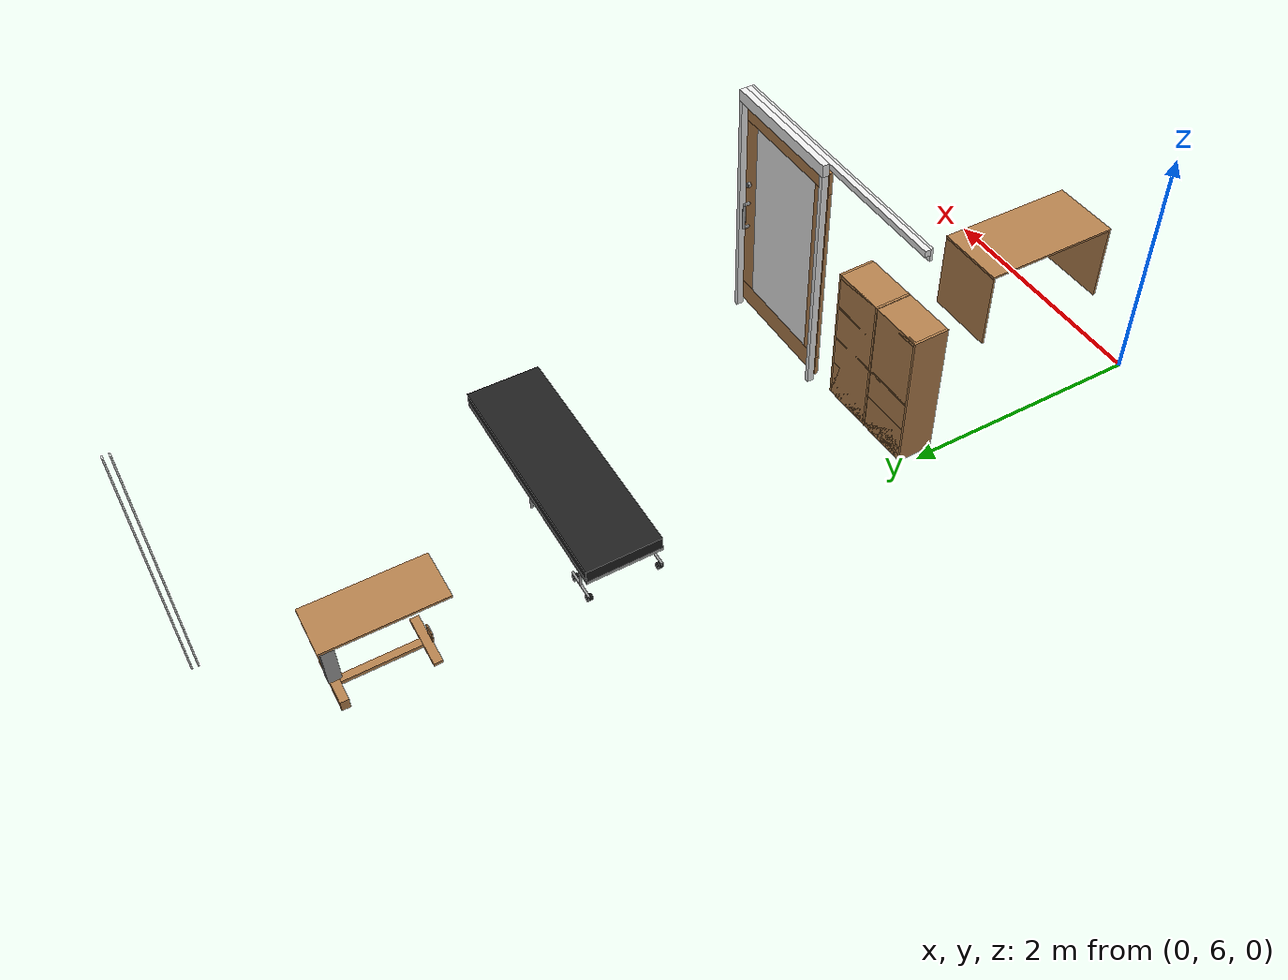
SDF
<sdf version="1.6">
 <world name="apartment">
  <model name="door_stopper_x02y16">
   <link name="door_frame">
    <visual name="stopper">
     <pose>0.0225 0.0175 1.025 0 -0 0</pose>
     <geometry><box><size>0.01 0.035 2.05</size></box></geometry>
     <material>
      <script><uri>model://base_materials/color/scripts</uri><name>hsr_color/white</name></script>
     </material>
    </visual>
    <collision name="collision_frame_1">
     <pose>0.0225 0.0175 1.025 0 -0 0</pose>
     <geometry><box><size>0.01 0.035 2.05</size></box></geometry>
    </collision>
    <visual name="frame_2">
     <pose>-0.0225 0.0175 1.025 0 -0 0</pose>
     <geometry><box><size>0.01 0.035 2.05</size></box></geometry>
     <material>
      <script><uri>model://base_materials/color/scripts</uri><name>hsr_color/white</name></script>
     </material>
    </visual>
    <collision name="collision_frame_2">
     <pose>-0.0225 0.0175 1.025 0 -0 0</pose>
     <geometry><box><size>0.01 0.035 2.05</size></box></geometry>
    </collision>
   </link>
   <static>1</static>
   <pose>0.93 13.2075 0 0 -0 1.5708</pose>
  </model>
  <model name="door_x03y09">
   <joint name="frame_to_world_joint" type="revolute">
    <parent>world</parent>
    <child>frame</child>
    <axis>
     <xyz>0 0 1</xyz>
     <limit><upper>0</upper><lower>0</lower></limit>
     <use_parent_model_frame>1</use_parent_model_frame>
     <dynamics><spring_reference>0</spring_reference><spring_stiffness>0</spring_stiffness></dynamics>
    </axis>
   </joint>
   <link name="frame">
    <inertial>
     <mass>50</mass>
     <inertia><ixx>1</ixx><ixy>0</ixy><ixz>0</ixz><iyy>1</iyy><iyz>0</iyz><izz>1</izz></inertia>
    </inertial>
    <visual name="right_frame">
     <pose>0 0.5325 0.995 0 -0 0</pose>
     <geometry><box><size>0.055 0.035 1.99</size></box></geometry>
     <material>
      <script><uri>model://base_materials/color/scripts</uri><name>hsr_color/white</name></script>
     </material>
    </visual>
    <collision name="collision_right_frame">
     <pose>0 0.5325 0.995 0 -0 0</pose>
     <geometry><box><size>0.055 0.035 1.99</size></box></geometry>
    </collision>
    <visual name="left_frame">
     <pose>0 -0.5325 0.995 0 -0 0</pose>
     <geometry><box><size>0.055 0.035 1.99</size></box></geometry>
     <material>
      <script><uri>model://base_materials/color/scripts</uri><name>hsr_color/white</name></script>
     </material>
    </visual>
    <collision name="collision_left_frame">
     <pose>0 -0.5325 0.995 0 -0 0</pose>
     <geometry><box><size>0.055 0.035 1.99</size></box></geometry>
    </collision>
    <visual name="top_frame">
     <pose>0 0 2.04 0 -0 0</pose>
     <geometry><box><size>0.055 1.1 0.1</size></box></geometry>
     <material>
      <script><uri>model://base_materials/color/scripts</uri><name>hsr_color/white</name></script>
     </material>
    </visual>
    <collision name="collision_top_frame">
     <pose>0 0 2.04 0 -0 0</pose>
     <geometry><box><size>0.055 1.1 0.1</size></box></geometry>
    </collision>
    <visual name="top_guard">
     <pose>0.05 -0.55 2.065 0 -0 0</pose>
     <geometry><box><size>0.045 2.2 0.05</size></box></geometry>
     <material>
      <script><uri>model://base_materials/color/scripts</uri><name>hsr_color/white</name></script>
     </material>
    </visual>
    <collision name="collision_top_guard">
     <pose>0.05 -0.55 2.065 0 -0 0</pose>
     <geometry><box><size>0.045 2.2 0.05</size></box></geometry>
    </collision>
    <visual name="front_guard">
     <pose>0.0825 -0.55 2.04 0 -0 0</pose>
     <geometry><box><size>0.02 2.2 0.1</size></box></geometry>
     <material>
      <script><uri>model://base_materials/color/scripts</uri><name>hsr_color/white</name></script>
     </material>
    </visual>
    <collision name="collision_front_guard">
     <pose>0.0825 -0.55 2.04 0 -0 0</pose>
     <geometry><box><size>0.02 2.2 0.1</size></box></geometry>
    </collision>
   </link>
   <link name="door">
    <pose>-0.0275 0 0 0 -0 0</pose>
    <visual name="glass">
     <pose>0.0775 0 1.025 0 -0 0</pose>
     <geometry><box><size>0.03 0.77 1.58</size></box></geometry>
     <material>
      <script>
       <name>hsr_color/white_transparency1</name>
       <name>hsr_color/cornflowerblue_transparency1</name>
       <uri>__default__</uri>
      </script>
     </material>
    </visual>
    <collision name="collision_glass">
     <pose>0.0775 0 1.025 0 -0 0</pose>
     <geometry><box><size>0.03 0.77 1.58</size></box></geometry>
    </collision>
    <visual name="top_frame">
     <pose>0.0775 0 1.9075 0 -0 0</pose>
     <geometry><box><size>0.03 1.1 0.185</size></box></geometry>
     <material>
      <script><uri>model://base_materials/wood/scripts/wood.material</uri><name>base_materials/wood</name></script>
     </material>
    </visual>
    <collision name="collision_top_frame">
     <pose>0.0775 0 1.9075 0 -0 0</pose>
     <geometry><box><size>0.03 1.1 0.185</size></box></geometry>
    </collision>
    <visual name="right_frame">
     <pose>0.0775 0.4675 1.025 0 -0 0</pose>
     <geometry><box><size>0.03 0.165 1.58</size></box></geometry>
     <material>
      <script><uri>model://base_materials/wood/scripts/wood.material</uri><name>base_materials/wood</name></script>
     </material>
    </visual>
    <collision name="collision_right_frame">
     <pose>0.0775 0.4675 1.025 0 -0 0</pose>
     <geometry><box><size>0.03 0.165 1.58</size></box></geometry>
    </collision>
    <visual name="left_frame">
     <pose>0.0775 -0.4675 1.025 0 -0 0</pose>
     <geometry><box><size>0.03 0.165 1.58</size></box></geometry>
     <material>
      <script><uri>model://base_materials/wood/scripts/wood.material</uri><name>base_materials/wood</name></script>
     </material>
    </visual>
    <collision name="collision_left_frame">
     <pose>0.0775 -0.4675 1.025 0 -0 0</pose>
     <geometry><box><size>0.03 0.165 1.58</size></box></geometry>
    </collision>
    <visual name="bottom_frame">
     <pose>0.0775 0 0.1425 0 -0 0</pose>
     <geometry><box><size>0.03 1.1 0.185</size></box></geometry>
     <material>
      <script><uri>model://base_materials/wood/scripts/wood.material</uri><name>base_materials/wood</name></script>
     </material>
    </visual>
    <collision name="collision_bottom_frame">
     <pose>0.0775 0 0.1425 0 -0 0</pose>
     <geometry><box><size>0.03 1.1 0.185</size></box></geometry>
    </collision>
    <visual name="handle_top_frame">
     <pose>0.0775 0.4675 1.0675 3.14159 1.57079 3.14159</pose>
     <geometry><cylinder><radius>0.0125</radius><length>0.125</length></cylinder></geometry>
     <material>
      <script><uri>model://base_materials/color/scripts</uri><name>hsr_color/grey</name></script>
     </material>
    </visual>
    <collision name="collision_handle_top_frame">
     <pose>0.0775 0.4675 1.0675 3.14159 1.57079 3.14159</pose>
     <geometry><cylinder><radius>0.0125</radius><length>0.125</length></cylinder></geometry>
    </collision>
    <visual name="handle_bottom_frame">
     <pose>0.0775 0.4675 0.8425 3.14159 1.57079 3.14159</pose>
     <geometry><cylinder><radius>0.0125</radius><length>0.125</length></cylinder></geometry>
     <material>
      <script><uri>model://base_materials/color/scripts</uri><name>hsr_color/grey</name></script>
     </material>
    </visual>
    <collision name="collision_handle_bottom_frame">
     <pose>0.0775 0.4675 0.8425 3.14159 1.57079 3.14159</pose>
     <geometry><cylinder><radius>0.0125</radius><length>0.125</length></cylinder></geometry>
    </collision>
    <visual name="handle_front_frame">
     <pose>0.14 0.4675 0.955 0 -0 0</pose>
     <geometry><cylinder><radius>0.0125</radius><length>0.225</length></cylinder></geometry>
     <material>
      <script><uri>model://base_materials/color/scripts</uri><name>hsr_color/grey</name></script>
     </material>
    </visual>
    <collision name="collision_handle_front_frame">
     <pose>0.14 0.4675 0.955 0 -0 0</pose>
     <geometry><cylinder><radius>0.0125</radius><length>0.225</length></cylinder></geometry>
    </collision>
    <visual name="handle_back_frame">
     <pose>0.015 0.4675 0.955 0 -0 0</pose>
     <geometry><cylinder><radius>0.0125</radius><length>0.225</length></cylinder></geometry>
     <material>
      <script><uri>model://base_materials/color/scripts</uri><name>hsr_color/grey</name></script>
     </material>
    </visual>
    <collision name="collision_handle_back_frame">
     <pose>0.015 0.4675 0.955 0 -0 0</pose>
     <geometry><cylinder><radius>0.0125</radius><length>0.225</length></cylinder></geometry>
    </collision>
    <visual name="handle_front_top_corner">
     <pose>0.14 0.4675 1.0675 0 -0 0</pose>
     <geometry><sphere><radius>0.0125</radius></sphere></geometry>
     <material>
      <script><uri>model://base_materials/color/scripts</uri><name>hsr_color/grey</name></script>
     </material>
    </visual>
    <collision name="collision_handle_front_top_corner">
     <pose>0.14 0.4675 1.0675 0 -0 0</pose>
     <geometry><sphere><radius>0.0125</radius></sphere></geometry>
    </collision>
    <visual name="handle_front_bottom_corner">
     <pose>0.14 0.4675 0.8425 0 -0 0</pose>
     <geometry><sphere><radius>0.0125</radius></sphere></geometry>
     <material>
      <script><uri>model://base_materials/color/scripts</uri><name>hsr_color/grey</name></script>
     </material>
    </visual>
    <collision name="collision_handle_front_bottom_corner">
     <pose>0.14 0.4675 0.8425 0 -0 0</pose>
     <geometry><sphere><radius>0.0125</radius></sphere></geometry>
    </collision>
    <visual name="handle_back_top_corner">
     <pose>0.015 0.4675 1.0675 0 -0 0</pose>
     <geometry><sphere><radius>0.0125</radius></sphere></geometry>
     <material>
      <script><uri>model://base_materials/color/scripts</uri><name>hsr_color/grey</name></script>
     </material>
    </visual>
    <collision name="collision_handle_back_top_corner">
     <pose>0.015 0.4675 1.0675 0 -0 0</pose>
     <geometry><sphere><radius>0.0125</radius></sphere></geometry>
    </collision>
    <visual name="handle_back_bottom_corner">
     <pose>0.015 0.4675 0.8425 0 -0 0</pose>
     <geometry><sphere><radius>0.0125</radius></sphere></geometry>
     <material>
      <script><uri>model://base_materials/color/scripts</uri><name>hsr_color/grey</name></script>
     </material>
    </visual>
    <collision name="collision_handle_back_bottom_corner">
     <pose>0.015 0.4675 0.8425 0 -0 0</pose>
     <geometry><sphere><radius>0.0125</radius></sphere></geometry>
    </collision>
    <visual name="handle_lock1">
     <pose>0.0775 0.4675 1.25 3.14159 1.57079 3.14159</pose>
     <geometry><cylinder><radius>0.02</radius><length>0.08</length></cylinder></geometry>
     <material>
      <script><uri>model://base_materials/color/scripts</uri><name>hsr_color/grey</name></script>
     </material>
    </visual>
    <collision name="collision_handle_lock1">
     <pose>0.0775 0.4675 1.25 3.14159 1.57079 3.14159</pose>
     <geometry><cylinder><radius>0.02</radius><length>0.08</length></cylinder></geometry>
    </collision>
    <visual name="handle_lock2">
     <pose>0.0775 0.4675 1.25 3.14159 1.57079 3.14159</pose>
     <geometry><cylinder><radius>0.015</radius><length>0.09</length></cylinder></geometry>
     <material>
      <script><uri>model://base_materials/color/scripts</uri><name>hsr_color/grey</name></script>
     </material>
    </visual>
    <collision name="collision_handle_lock2">
     <pose>0.0775 0.4675 1.25 3.14159 1.57079 3.14159</pose>
     <geometry><cylinder><radius>0.015</radius><length>0.09</length></cylinder></geometry>
    </collision>
    <velocity_decay><linear>0</linear><angular>0</angular></velocity_decay>
    <inertial>
     <inertia><ixx>1</ixx><ixy>0</ixy><ixz>0</ixz><iyy>1</iyy><iyz>0</iyz><izz>1</izz></inertia>
     <mass>1</mass>
    </inertial>
   </link>
   <joint name="top_sliding_joint" type="prismatic">
    <parent>frame</parent>
    <child>door</child>
    <axis>
     <dynamics>
      <damping>1</damping>
      <friction>1</friction>
      <spring_reference>0</spring_reference>
      <spring_stiffness>0</spring_stiffness>
     </dynamics>
     <limit><lower>-1</lower><upper>0</upper></limit>
     <xyz>0 1 0</xyz>
     <use_parent_model_frame>1</use_parent_model_frame>
    </axis>
   </joint>
   <static>0</static>
   <pose>1.65 8.23 0 0 2e-06 -1.5708</pose>
  </model>
  <model name="office_desk01">
   <link name="link">
    <inertial>
     <mass>10</mass>
     <inertia><ixx>1</ixx><ixy>0</ixy><ixz>0</ixz><iyy>1</iyy><iyz>0</iyz><izz>1</izz></inertia>
    </inertial>
    <visual name="top_board">
     <pose>-0.3 0.6 0.69 0 -0 0</pose>
     <geometry><box><size>0.6 1.2 0.02</size></box></geometry>
     <material>
      <script>
       <uri>model://base_materials/wood/scripts/wood.material</uri>
       <name>base_materials/dark_wood</name>
      </script>
     </material>
    </visual>
    <collision name="collision_top_board">
     <pose>-0.3 0.6 0.69 0 -0 0</pose>
     <geometry><box><size>0.6 1.2 0.02</size></box></geometry>
    </collision>
    <visual name="left_board">
     <pose>-0.3 0.01 0.34 0 -0 0</pose>
     <geometry><box><size>0.6 0.02 0.68</size></box></geometry>
     <material>
      <script>
       <uri>model://base_materials/wood/scripts/wood.material</uri>
       <name>base_materials/dark_wood</name>
      </script>
     </material>
    </visual>
    <collision name="collision_left_board">
     <pose>-0.3 0.01 0.34 0 -0 0</pose>
     <geometry><box><size>0.6 0.02 0.68</size></box></geometry>
    </collision>
    <visual name="right_board">
     <pose>-0.3 1.19 0.34 0 -0 0</pose>
     <geometry><box><size>0.6 0.02 0.68</size></box></geometry>
     <material>
      <script>
       <uri>model://base_materials/wood/scripts/wood.material</uri>
       <name>base_materials/dark_wood</name>
      </script>
     </material>
    </visual>
    <collision name="collision_right_board">
     <pose>-0.3 1.19 0.34 0 -0 0</pose>
     <geometry><box><size>0.6 0.02 0.68</size></box></geometry>
    </collision>
    <visual name="center_board">
     <pose>-0.14 0.6 0.49 0 -0 0</pose>
     <geometry><box><size>0.02 1.16 0.4</size></box></geometry>
     <material>
      <script>
       <uri>model://base_materials/wood/scripts/wood.material</uri>
       <name>base_materials/dark_wood</name>
      </script>
     </material>
    </visual>
    <collision name="ollision_center_board">
     <pose>-0.14 0.6 0.49 0 -0 0</pose>
     <geometry><box><size>0.02 1.16 0.4</size></box></geometry>
    </collision>
    <velocity_decay><linear>0</linear><angular>0</angular></velocity_decay>
   </link>
   <static>1</static>
   <pose>1.35599 5.5925 0 0 0 -4e-06</pose>
  </model>
  <model name="bed">
   <link name="link">
    <inertial>
     <mass>10</mass>
     <inertia><ixx>1</ixx><ixy>0</ixy><ixz>0</ixz><iyy>1</iyy><iyz>0</iyz><izz>1</izz></inertia>
    </inertial>
    <visual name="cushion">
     <pose>-0.295 -0.975 0.2875 0 -0 0</pose>
     <geometry><box><size>0.59 1.95 0.095</size></box></geometry>
     <material>
      <script>
       <uri>model://base_materials/cloth/scripts</uri>
       <uri>model://base_materials/cloth/textures</uri>
       <name>cloth/black</name>
      </script>
     </material>
    </visual>
    <collision name="collision_cushion">
     <pose>-0.295 -0.975 0.2875 0 -0 0</pose>
     <geometry><box><size>0.59 1.95 0.095</size></box></geometry>
    </collision>
    <visual name="top_frame">
     <pose>-0.295 -0.975 0.225 0 -0 0</pose>
     <geometry><box><size>0.59 1.95 0.03</size></box></geometry>
     <material>
      <script><uri>model://base_materials/color/scripts</uri><name>hsr_color/grey</name></script>
     </material>
    </visual>
    <collision name="collision_top_frame">
     <pose>-0.295 -0.975 0.225 0 -0 0</pose>
     <geometry><box><size>0.59 1.95 0.03</size></box></geometry>
    </collision>
    <visual name="right_front_pole">
     <pose>-0.075 -0.0125 0.125 0 -0 0</pose>
     <geometry><cylinder><radius>0.0125</radius><length>0.17</length></cylinder></geometry>
     <material>
      <script><uri>model://base_materials/color/scripts</uri><name>hsr_color/grey</name></script>
     </material>
    </visual>
    <collision name="collision_right_front_pole">
     <pose>-0.075 -0.0125 0.125 0 -0 0</pose>
     <geometry><cylinder><radius>0.0125</radius><length>0.17</length></cylinder></geometry>
    </collision>
    <visual name="right_front_caster">
     <pose>-0.075 -0.0125 0.02 0 1.57 0</pose>
     <geometry><cylinder><radius>0.02</radius><length>0.04</length></cylinder></geometry>
     <material><script><name>Gazebo/Black</name><uri>__default__</uri></script></material>
    </visual>
    <collision name="collision_right_front_caster">
     <pose>-0.075 -0.0125 0.02 0 1.57 0</pose>
     <geometry><cylinder><radius>0.02</radius><length>0.04</length></cylinder></geometry>
    </collision>
    <visual name="right_back_pole">
     <pose>-0.46 -0.0125 0.125 0 -0 0</pose>
     <geometry><cylinder><radius>0.0125</radius><length>0.17</length></cylinder></geometry>
     <material>
      <script><uri>model://base_materials/color/scripts</uri><name>hsr_color/grey</name></script>
     </material>
    </visual>
    <collision name="collision_right_back_pole">
     <pose>-0.46 -0.0125 0.125 0 -0 0</pose>
     <geometry><cylinder><radius>0.0125</radius><length>0.17</length></cylinder></geometry>
    </collision>
    <visual name="right_back_caster">
     <pose>-0.46 -0.0125 0.02 0 1.57 0</pose>
     <geometry><cylinder><radius>0.02</radius><length>0.04</length></cylinder></geometry>
     <material><script><name>Gazebo/Black</name><uri>__default__</uri></script></material>
    </visual>
    <collision name="collision_back_front_caster">
     <pose>-0.46 -0.0125 0.02 0 1.57 0</pose>
     <geometry><cylinder><radius>0.02</radius><length>0.04</length></cylinder></geometry>
    </collision>
    <visual name="center_front_pole">
     <pose>-0.0425 -0.975 0.105 0 -0 0</pose>
     <geometry><cylinder><radius>0.0125</radius><length>0.21</length></cylinder></geometry>
     <material>
      <script><uri>model://base_materials/color/scripts</uri><name>hsr_color/grey</name></script>
     </material>
    </visual>
    <collision name="collision_center_front_pole">
     <pose>-0.0425 -0.975 0.105 0 -0 0</pose>
     <geometry><cylinder><radius>0.0125</radius><length>0.17</length></cylinder></geometry>
    </collision>
    <visual name="center_back_pole">
     <pose>-0.5475 -0.975 0.105 0 -0 0</pose>
     <geometry><cylinder><radius>0.0125</radius><length>0.21</length></cylinder></geometry>
     <material>
      <script><uri>model://base_materials/color/scripts</uri><name>hsr_color/grey</name></script>
     </material>
    </visual>
    <collision name="collision_center_back_pole">
     <pose>-0.5475 -0.975 0.105 0 -0 0</pose>
     <geometry><cylinder><radius>0.0125</radius><length>0.17</length></cylinder></geometry>
    </collision>
    <visual name="left_front_horizon_pole">
     <pose>-0.01 -1.825 0.06 1.57 -0 0</pose>
     <geometry><cylinder><radius>0.01</radius><length>0.25</length></cylinder></geometry>
     <material>
      <script><uri>model://base_materials/color/scripts</uri><name>hsr_color/grey</name></script>
     </material>
    </visual>
    <collision name="collision_left_front_horizon_pole">
     <pose>-0.01 -1.825 0.06 1.57 -0 0</pose>
     <geometry><cylinder><radius>0.01</radius><length>0.25</length></cylinder></geometry>
    </collision>
    <visual name="left_front_vertical_pole">
     <pose>-0.01 -1.825 0.14 0 -0 0</pose>
     <geometry><cylinder><radius>0.01</radius><length>0.14</length></cylinder></geometry>
     <material>
      <script><uri>model://base_materials/color/scripts</uri><name>hsr_color/grey</name></script>
     </material>
    </visual>
    <collision name="collision_left_front_vertical_pole">
     <pose>-0.01 -1.825 0.14 0 -0 0</pose>
     <geometry><cylinder><radius>0.01</radius><length>0.14</length></cylinder></geometry>
    </collision>
    <visual name="left_front_caster_r">
     <pose>-0.02 -1.725 0.025 0 1.57 0</pose>
     <geometry><cylinder><radius>0.025</radius><length>0.04</length></cylinder></geometry>
     <material><script><name>Gazebo/Black</name><uri>__default__</uri></script></material>
    </visual>
    <collision name="collision_left_front_caster_r">
     <pose>-0.02 -1.725 0.025 0 1.57 0</pose>
     <geometry><cylinder><radius>0.025</radius><length>0.04</length></cylinder></geometry>
    </collision>
    <visual name="left_front_caster_l">
     <pose>-0.02 -1.925 0.025 0 1.57 0</pose>
     <geometry><cylinder><radius>0.025</radius><length>0.04</length></cylinder></geometry>
     <material><script><name>Gazebo/Black</name><uri>__default__</uri></script></material>
    </visual>
    <collision name="collision_left_front_caster_l">
     <pose>-0.02 -1.925 0.025 0 1.57 0</pose>
     <geometry><cylinder><radius>0.025</radius><length>0.04</length></cylinder></geometry>
    </collision>
    <visual name="left_back_horizon_pole">
     <pose>-0.58 -1.825 0.06 1.57 -0 0</pose>
     <geometry><cylinder><radius>0.01</radius><length>0.25</length></cylinder></geometry>
     <material>
      <script><uri>model://base_materials/color/scripts</uri><name>hsr_color/grey</name></script>
     </material>
    </visual>
    <collision name="collision_left_back_horizon_pole">
     <pose>-0.58 -1.825 0.06 1.57 -0 0</pose>
     <geometry><cylinder><radius>0.01</radius><length>0.25</length></cylinder></geometry>
    </collision>
    <visual name="left_back_vertical_pole">
     <pose>-0.58 -1.825 0.14 0 -0 0</pose>
     <geometry><cylinder><radius>0.01</radius><length>0.14</length></cylinder></geometry>
     <material>
      <script><uri>model://base_materials/color/scripts</uri><name>hsr_color/grey</name></script>
     </material>
    </visual>
    <collision name="collision_left_back_vertical_pole">
     <pose>-0.58 -1.825 0.14 0 -0 0</pose>
     <geometry><cylinder><radius>0.01</radius><length>0.14</length></cylinder></geometry>
    </collision>
    <visual name="left_back_caster_r">
     <pose>-0.57 -1.725 0.025 0 1.57 0</pose>
     <geometry><cylinder><radius>0.025</radius><length>0.04</length></cylinder></geometry>
     <material><script><name>Gazebo/Black</name><uri>__default__</uri></script></material>
    </visual>
    <collision name="collision_left_back_caster_r">
     <pose>-0.57 -1.725 0.025 0 1.57 0</pose>
     <geometry><cylinder><radius>0.025</radius><length>0.04</length></cylinder></geometry>
    </collision>
    <visual name="left_back_caster_l">
     <pose>-0.57 -1.925 0.025 0 1.57 0</pose>
     <geometry><cylinder><radius>0.025</radius><length>0.04</length></cylinder></geometry>
     <material><script><name>Gazebo/Black</name><uri>__default__</uri></script></material>
    </visual>
    <collision name="collision_left_back_caster_l">
     <pose>-0.57 -1.925 0.025 0 1.57 0</pose>
     <geometry><cylinder><radius>0.025</radius><length>0.04</length></cylinder></geometry>
    </collision>
    <velocity_decay><linear>0</linear><angular>0</angular></velocity_decay>
   </link>
   <static>1</static>
   <pose>2.00466 10.146 0 0 0 -1.5708</pose>
  </model>
  <model name="bed_table">
   <link name="link">
    <inertial>
     <pose>0 0.449 0.001 0 -0 0</pose>
     <mass>10</mass>
     <inertia><ixx>1</ixx><ixy>0</ixy><ixz>0</ixz><iyy>1</iyy><iyz>0</iyz><izz>1</izz></inertia>
    </inertial>
    <visual name="top_board">
     <pose>0 0.449 0.625 0 -0 0</pose>
     <geometry><box><size>0.398 0.898 0.02</size></box></geometry>
     <material>
      <script><uri>model://base_materials/wood/scripts/wood.material</uri><name>base_materials/wood</name></script>
     </material>
    </visual>
    <collision name="collision_top_board">
     <pose>0 0.449 0.625 0 -0 0</pose>
     <geometry><box><size>0.398 0.898 0.02</size></box></geometry>
    </collision>
    <visual name="right_pole">
     <pose>0 0.817 0.3515 0 -0 0</pose>
     <geometry><box><size>0.072 0.094 0.527</size></box></geometry>
     <material>
      <script><uri>model://base_materials/color/scripts</uri><name>hsr_color/grey</name></script>
     </material>
    </visual>
    <collision name="collision_right_pole">
     <pose>0 0.817 0.3515 0 -0 0</pose>
     <geometry><box><size>0.072 0.094 0.527</size></box></geometry>
    </collision>
    <visual name="right_bottom_pole">
     <pose>0 0.8225 0.044 0 -0 0</pose>
     <geometry><box><size>0.42 0.063 0.088</size></box></geometry>
     <material>
      <script><uri>model://base_materials/wood/scripts/wood.material</uri><name>base_materials/wood</name></script>
     </material>
    </visual>
    <collision name="collision_right_bottom_pole">
     <pose>0 0.8225 0.044 0 -0 0</pose>
     <geometry><box><size>0.42 0.063 0.088</size></box></geometry>
    </collision>
    <visual name="bottom_center_pole">
     <pose>0 0.502 0.03 0 -0 0</pose>
     <geometry><box><size>0.06 0.578 0.03</size></box></geometry>
     <material>
      <script><uri>model://base_materials/wood/scripts/wood.material</uri><name>base_materials/wood</name></script>
     </material>
    </visual>
    <collision name="collision_bottom_center_pole">
     <pose>0 0.502 0.03 0 -0 0</pose>
     <geometry><box><size>0.06 0.578 0.03</size></box></geometry>
    </collision>
    <visual name="left_bottom_pole">
     <pose>0 0.18 0.0325 0 -0 0</pose>
     <geometry><box><size>0.418 0.066 0.025</size></box></geometry>
     <material>
      <script><uri>model://base_materials/wood/scripts/wood.material</uri><name>base_materials/wood</name></script>
     </material>
    </visual>
    <collision name="collision_left_bottom_pole">
     <pose>0 0.18 0.0325 0 -0 0</pose>
     <geometry><box><size>0.418 0.066 0.025</size></box></geometry>
    </collision>
    <visual name="marker_0010">
     <pose>0 0.14 0.093 0 -0 0</pose>
     <geometry><box><size>0.09 0.001 0.09</size></box></geometry>
     <material>
      <script>
       <uri>model://bed_table/marker/0010/scripts</uri>
       <uri>model://bed_table/marker/0010/textures</uri>
       <name>Marker/0010</name>
      </script>
     </material>
    </visual>
    <collision name="collision_marker_0010">
     <pose>0 0.14 0.093 0 -0 0</pose>
     <geometry><box><size>0.09 0.001 0.09</size></box></geometry>
    </collision>
    <visual name="marker_0010_back_plate">
     <pose>0 0.146 0.093 0 -0 0</pose>
     <geometry><box><size>0.09 0.01 0.09</size></box></geometry>
     <material>
      <script><uri>model://base_materials/wood/scripts/wood.material</uri><name>base_materials/wood</name></script>
     </material>
    </visual>
    <collision name="collision_marker_0010_back_plate">
     <pose>0 0.146 0.093 0 -0 0</pose>
     <geometry><box><size>0.09 0.01 0.09</size></box></geometry>
    </collision>
    <velocity_decay><linear>0</linear><angular>0</angular></velocity_decay>
   </link>
   <static>1</static>
   <pose>0.30649 11.6368 0 0 -0 0</pose>
  </model>
  <model name="hcr_shefl_2">
   <link name="link">
    <inertial>
     <mass>5</mass>
     <inertia><ixx>1</ixx><ixy>0</ixy><ixz>0</ixz><iyy>1</iyy><iyz>0</iyz><izz>1</izz></inertia>
    </inertial>
    <visual name="left_board">
     <pose>-0.1475 0.009 -0.598 0 -0 0</pose>
     <geometry><box><size>0.295 0.018 1.196</size></box></geometry>
     <material>
      <script><uri>model://base_materials/wood/scripts/wood.material</uri><name>base_materials/wood</name></script>
     </material>
    </visual>
    <collision name="collision_left_board">
     <pose>-0.1475 0.009 -0.598 0 -0 0</pose>
     <geometry><box><size>0.295 0.018 1.196</size></box></geometry>
    </collision>
    <visual name="right_board">
     <pose>-0.1475 0.441 -0.598 0 -0 0</pose>
     <geometry><box><size>0.295 0.018 1.196</size></box></geometry>
     <material>
      <script><uri>model://base_materials/wood/scripts/wood.material</uri><name>base_materials/wood</name></script>
     </material>
    </visual>
    <collision name="collision_right_board">
     <pose>-0.1475 0.441 -0.598 0 -0 0</pose>
     <geometry><box><size>0.295 0.018 1.196</size></box></geometry>
    </collision>
    <visual name="top_board">
     <pose>-0.1475 0.225 -0.0175 0 -0 0</pose>
     <geometry><box><size>0.295 0.414 0.035</size></box></geometry>
     <material>
      <script><uri>model://base_materials/wood/scripts/wood.material</uri><name>base_materials/wood</name></script>
     </material>
    </visual>
    <collision name="collision_top_board">
     <pose>-0.1475 0.225 -0.0175 0 -0 0</pose>
     <geometry><box><size>0.295 0.414 0.035</size></box></geometry>
    </collision>
    <visual name="1st_shelf">
     <pose>-0.162 0.225 -0.311 0 -0 0</pose>
     <geometry><box><size>0.266 0.414 0.018</size></box></geometry>
     <material>
      <script><uri>model://base_materials/wood/scripts/wood.material</uri><name>base_materials/wood</name></script>
     </material>
    </visual>
    <collision name="collision_1st_shelf">
     <pose>-0.162 0.225 -0.311 0 -0 0</pose>
     <geometry><box><size>0.266 0.414 0.018</size></box></geometry>
    </collision>
    <visual name="2nd_shelf">
     <pose>-0.162 0.225 -0.613 0 -0 0</pose>
     <geometry><box><size>0.266 0.414 0.018</size></box></geometry>
     <material>
      <script><uri>model://base_materials/wood/scripts/wood.material</uri><name>base_materials/wood</name></script>
     </material>
    </visual>
    <collision name="collision_2nd_shelf">
     <pose>-0.162 0.225 -0.613 0 -0 0</pose>
     <geometry><box><size>0.266 0.414 0.018</size></box></geometry>
    </collision>
    <visual name="bottom_board">
     <pose>-0.1475 0.225 -1.0335 0 -0 0</pose>
     <geometry><box><size>0.295 0.414 0.325</size></box></geometry>
     <material>
      <script><uri>model://base_materials/wood/scripts/wood.material</uri><name>base_materials/wood</name></script>
     </material>
    </visual>
    <collision name="collision_bottom_board">
     <pose>-0.1475 0.225 -1.0335 0 -0 0</pose>
     <geometry><box><size>0.295 0.414 0.325</size></box></geometry>
    </collision>
    <visual name="back_board">
     <pose>-0.286 0.225 -0.598 0 -0 0</pose>
     <geometry><box><size>0.018 0.414 1.196</size></box></geometry>
     <material>
      <script><uri>model://base_materials/wood/scripts/wood.material</uri><name>base_materials/wood</name></script>
     </material>
    </visual>
    <collision name="collision_back_board">
     <pose>-0.286 0.225 -0.598 0 -0 0</pose>
     <geometry><box><size>0.018 0.414 1.196</size></box></geometry>
    </collision>
    <visual name="marker_0030">
     <pose>0 0.32 -1.015 0 -0 0</pose>
     <geometry><box><size>0.0001 0.21 0.21</size></box></geometry>
     <material>
      <script>
       <uri>model://hcr_shelf_2/marker/0030/scripts</uri>
       <uri>model://hcr_shelf_2/marker/0030/textures</uri>
       <name>Marker/0030</name>
      </script>
     </material>
    </visual>
    <collision name="collision_marker_0030">
     <pose>0 0.32 -1.015 0 -0 0</pose>
     <geometry><box><size>0.0001 0.21 0.21</size></box></geometry>
    </collision>
    <velocity_decay><linear>0</linear><angular>0</angular></velocity_decay>
   </link>
   <static>1</static>
   <pose>0.055428 7.83725 1.19463 0 0 -1.54462</pose>
  </model>
  <model name="hcr_shefl_2_clone">
   <link name="link">
    <inertial>
     <mass>5</mass>
     <inertia><ixx>1</ixx><ixy>0</ixy><ixz>0</ixz><iyy>1</iyy><iyz>0</iyz><izz>1</izz></inertia>
    </inertial>
    <visual name="left_board">
     <pose>-0.1475 0.009 -0.598 0 -0 0</pose>
     <geometry><box><size>0.295 0.018 1.196</size></box></geometry>
     <material>
      <script><uri>model://base_materials/wood/scripts/wood.material</uri><name>base_materials/wood</name></script>
     </material>
    </visual>
    <collision name="collision_left_board">
     <pose>-0.1475 0.009 -0.598 0 -0 0</pose>
     <geometry><box><size>0.295 0.018 1.196</size></box></geometry>
    </collision>
    <visual name="right_board">
     <pose>-0.1475 0.441 -0.598 0 -0 0</pose>
     <geometry><box><size>0.295 0.018 1.196</size></box></geometry>
     <material>
      <script><uri>model://base_materials/wood/scripts/wood.material</uri><name>base_materials/wood</name></script>
     </material>
    </visual>
    <collision name="collision_right_board">
     <pose>-0.1475 0.441 -0.598 0 -0 0</pose>
     <geometry><box><size>0.295 0.018 1.196</size></box></geometry>
    </collision>
    <visual name="top_board">
     <pose>-0.1475 0.225 -0.0175 0 -0 0</pose>
     <geometry><box><size>0.295 0.414 0.035</size></box></geometry>
     <material>
      <script><uri>model://base_materials/wood/scripts/wood.material</uri><name>base_materials/wood</name></script>
     </material>
    </visual>
    <collision name="collision_top_board">
     <pose>-0.1475 0.225 -0.0175 0 -0 0</pose>
     <geometry><box><size>0.295 0.414 0.035</size></box></geometry>
    </collision>
    <visual name="1st_shelf">
     <pose>-0.162 0.225 -0.311 0 -0 0</pose>
     <geometry><box><size>0.266 0.414 0.018</size></box></geometry>
     <material>
      <script><uri>model://base_materials/wood/scripts/wood.material</uri><name>base_materials/wood</name></script>
     </material>
    </visual>
    <collision name="collision_1st_shelf">
     <pose>-0.162 0.225 -0.311 0 -0 0</pose>
     <geometry><box><size>0.266 0.414 0.018</size></box></geometry>
    </collision>
    <visual name="2nd_shelf">
     <pose>-0.162 0.225 -0.613 0 -0 0</pose>
     <geometry><box><size>0.266 0.414 0.018</size></box></geometry>
     <material>
      <script><uri>model://base_materials/wood/scripts/wood.material</uri><name>base_materials/wood</name></script>
     </material>
    </visual>
    <collision name="collision_2nd_shelf">
     <pose>-0.162 0.225 -0.613 0 -0 0</pose>
     <geometry><box><size>0.266 0.414 0.018</size></box></geometry>
    </collision>
    <visual name="bottom_board">
     <pose>-0.1475 0.225 -1.0335 0 -0 0</pose>
     <geometry><box><size>0.295 0.414 0.325</size></box></geometry>
     <material>
      <script><uri>model://base_materials/wood/scripts/wood.material</uri><name>base_materials/wood</name></script>
     </material>
    </visual>
    <collision name="collision_bottom_board">
     <pose>-0.1475 0.225 -1.0335 0 -0 0</pose>
     <geometry><box><size>0.295 0.414 0.325</size></box></geometry>
    </collision>
    <visual name="back_board">
     <pose>-0.286 0.225 -0.598 0 -0 0</pose>
     <geometry><box><size>0.018 0.414 1.196</size></box></geometry>
     <material>
      <script><uri>model://base_materials/wood/scripts/wood.material</uri><name>base_materials/wood</name></script>
     </material>
    </visual>
    <collision name="collision_back_board">
     <pose>-0.286 0.225 -0.598 0 -0 0</pose>
     <geometry><box><size>0.018 0.414 1.196</size></box></geometry>
    </collision>
    <visual name="marker_0030">
     <pose>0 0.32 -1.015 0 -0 0</pose>
     <geometry><box><size>0.0001 0.21 0.21</size></box></geometry>
     <material>
      <script>
       <uri>model://hcr_shelf_2/marker/0030/scripts</uri>
       <uri>model://hcr_shelf_2/marker/0030/textures</uri>
       <name>Marker/0030</name>
      </script>
     </material>
    </visual>
    <collision name="collision_marker_0030">
     <pose>0 0.32 -1.015 0 -0 0</pose>
     <geometry><box><size>0.0001 0.21 0.21</size></box></geometry>
    </collision>
    <velocity_decay><linear>0</linear><angular>0</angular></velocity_decay>
   </link>
   <static>1</static>
   <pose>0.492657 7.8505 1.19589 0 0 -1.54462</pose>
  </model>
 </world>
</sdf>
